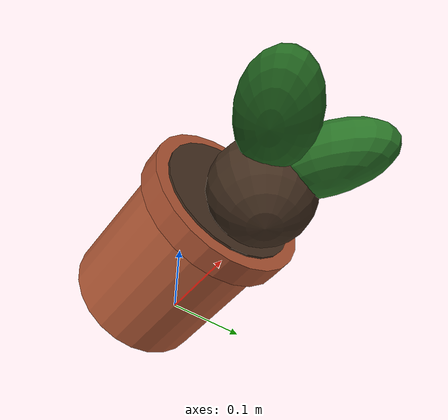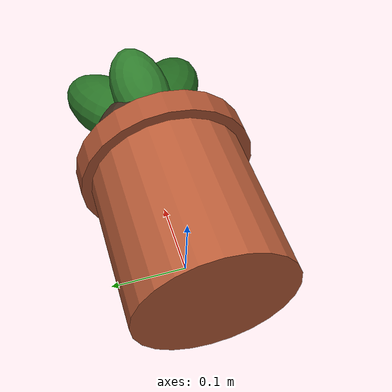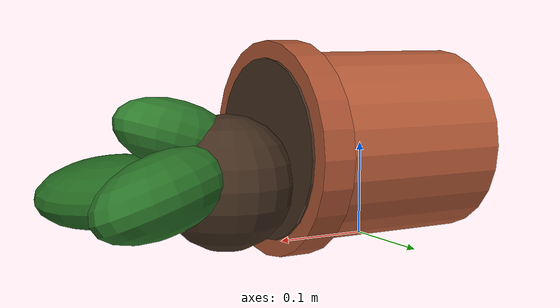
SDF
<?xml version="1.0"?>
<sdf version="1.8">
  <!-- Lying along +x with the mouth at the +x end -->
  <model name="spilled_plant_pot">
    <static>true</static>
    <link name="link">
      <collision name="pot">
        <pose>0 0 0.1 0 1.5708 0</pose>
        <geometry><cylinder><radius>0.1</radius><length>0.22</length></cylinder></geometry>
      </collision>
      <collision name="plant">
        <pose>0.22 0 0.06 0 0 0</pose>
        <geometry><cylinder><radius>0.1</radius><length>0.12</length></cylinder></geometry>
      </collision>
      <visual name="pot">
        <pose>0 0 0.1 0 1.5708 0</pose>
        <geometry><cylinder><radius>0.1</radius><length>0.22</length></cylinder></geometry>
        <material><ambient>0.62 0.30 0.18 1</ambient><diffuse>0.72 0.36 0.22 1</diffuse><specular>0.05 0.05 0.05 1</specular></material>
      </visual>
      <visual name="rim">
        <pose>0.1 0 0.1 0 1.5708 0</pose>
        <geometry><cylinder><radius>0.113</radius><length>0.035</length></cylinder></geometry>
        <material><ambient>0.58 0.28 0.17 1</ambient><diffuse>0.68 0.33 0.20 1</diffuse><specular>0.05 0.05 0.05 1</specular></material>
      </visual>
      <visual name="soil">
        <pose>0.119 0 0.1 0 1.5708 0</pose>
        <geometry><cylinder><radius>0.095</radius><length>0.003</length></cylinder></geometry>
        <material><ambient>0.22 0.15 0.10 1</ambient><diffuse>0.26 0.18 0.12 1</diffuse><specular>0 0 0 1</specular></material>
      </visual>
      <visual name="root_ball">
        <pose>0.17 0.01 0.07 0 0 0</pose>
        <geometry><sphere><radius>0.07</radius></sphere></geometry>
        <material><ambient>0.22 0.15 0.10 1</ambient><diffuse>0.26 0.18 0.12 1</diffuse><specular>0 0 0 1</specular></material>
      </visual>
      <visual name="leaves_1">
        <pose>0.25 0.04 0.07 0.3 0.2 0.4</pose>
        <geometry><ellipsoid><radii>0.09 0.05 0.04</radii></ellipsoid></geometry>
        <material><ambient>0.12 0.35 0.12 1</ambient><diffuse>0.16 0.45 0.15 1</diffuse><specular>0.1 0.1 0.1 1</specular></material>
      </visual>
      <visual name="leaves_2">
        <pose>0.27 -0.05 0.06 -0.3 0.1 -0.5</pose>
        <geometry><ellipsoid><radii>0.08 0.05 0.035</radii></ellipsoid></geometry>
        <material><ambient>0.10 0.32 0.10 1</ambient><diffuse>0.13 0.40 0.12 1</diffuse><specular>0.1 0.1 0.1 1</specular></material>
      </visual>
      <visual name="leaves_3">
        <pose>0.22 0.0 0.12 0 -0.3 0.1</pose>
        <geometry><ellipsoid><radii>0.07 0.04 0.035</radii></ellipsoid></geometry>
        <material><ambient>0.14 0.38 0.13 1</ambient><diffuse>0.18 0.48 0.17 1</diffuse><specular>0.1 0.1 0.1 1</specular></material>
      </visual>
    </link>
  </model>
</sdf>
